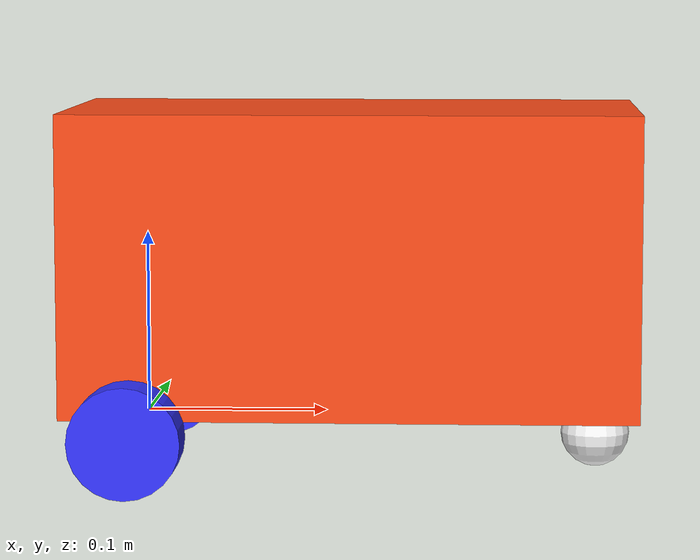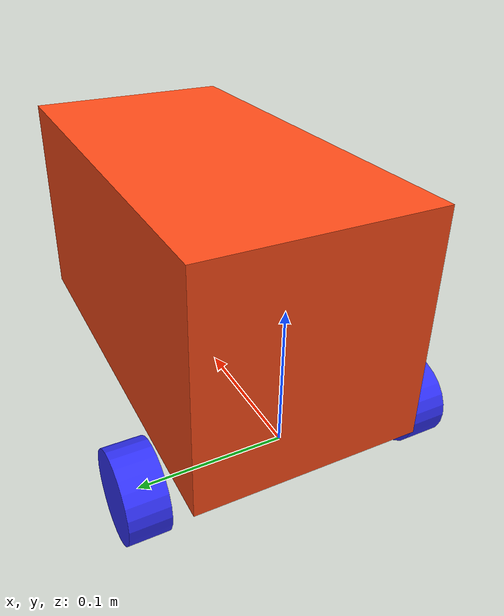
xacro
<?xml version="1.0"?>
<robot xmlns:xacro="http://www.ros.org/wiki/xacro">

    <xacro:include filename="inertial_macros.xacro" />

    <xacro:property name="chassis_length" value="0.311"/>
    <xacro:property name="chassis_width" value="0.16"/>
    <xacro:property name="chassis_height" value="0.164"/>
    <xacro:property name="chassis_mass" value="1.0"/>
    <xacro:property name="wheel_radius" value="0.03"/>
    <xacro:property name="wheel_thickness" value="0.027"/>
    <xacro:property name="wheel_mass" value="0.05"/>
    <xacro:property name="wheel_offset_x" value="0.039883"/>
    <xacro:property name="wheel_offset_y" value="0.10255"/>
    <xacro:property name="wheel_offset_z" value="-0.0060857"/>
    <xacro:property name="caster_wheel_radius" value="0.01905"/>
    <xacro:property name="caster_wheel_mass" value="0.01"/>
    <xacro:property name="caster_wheel_offset_x" value="0.290"/>
    <xacro:property name="caster_wheel_offset_z" value="${wheel_offset_z - wheel_radius + caster_wheel_radius}"/>
    <xacro:property name="chassis_z_compensation" value="0.185"/>

    <material name="white">
        <color rgba="1 1 1 1" />
    </material>

    <material name="orange">
        <color rgba="1 0.3 0.1 1" />
    </material>

    <material name="blue">
        <color rgba="0.2 0.2 1 1" />
    </material>

     <material name="red">
        <color rgba="1 0 0 1" />
    </material>

    <material name="black">
        <color rgba="0 0 0 1" />
    </material>

    <!-- BASE LINK -->

    <link name="base_link">

    </link>

    <!-- BASE FOOTPRINT LINK -->
    <joint name="base_footprint_joint" type="fixed">
        <parent link="base_link"/>
        <child link="base_footprint" />
        <origin xyz="0 0 0" rpy="0 0 0" />
    </joint>

    <link name="base_footprint">
    </link>

    <!-- CHASSIS LINK -->

    <joint name="chassis_joint" type="fixed">
        <parent link="base_link"/>
        <child link="chassis"/>
        <origin xyz="${-wheel_offset_x} 0 ${-wheel_offset_z}" />

    </joint>

    <link name="chassis">
     <visual>
            <origin xyz="${chassis_length/2} 0 ${chassis_height/2}"/>
            <geometry>
                <box size="${chassis_length} ${chassis_width} ${chassis_height}"/>
            </geometry>
            <material name="orange"/>
        </visual>

        <collision>
            <origin xyz="${chassis_length/2} 0 ${chassis_height/2}"/>
            <geometry>
                <box size="${chassis_length} ${chassis_width} ${chassis_height}"/>
            </geometry>
        </collision>
        <xacro:inertial_box mass="0.5" x="${chassis_length}" y="${chassis_width}" z="${chassis_height}">
            <origin xyz="${chassis_length/2} 0 ${chassis_height/2}" rpy="0 0 0"/>
        </xacro:inertial_box>
    </link>

    <!-- LEFT WHEEL LINK-->

    <joint name="left_wheel_joint" type="continuous">
        <parent link="base_link"/>
        <child link="left_wheel"/>
        <origin xyz="0 ${wheel_offset_y} 0" rpy="-${pi/2} 0 0" />
        <axis xyz="0 0 1"/>
    </joint>

    <link name="left_wheel">
        <visual>
            <geometry>
                <cylinder radius="${wheel_radius}" length="${wheel_thickness}"/>
            </geometry>
            <material name="blue"/>
        </visual>
        <collision>
            <geometry>
                <sphere radius="${wheel_radius}"/>
            </geometry>
        </collision>
        <xacro:inertial_cylinder mass="${wheel_mass}" length="${wheel_thickness}" radius="${wheel_radius}">
            <origin xyz="0 0 0" rpy="0 0 0"/>
        </xacro:inertial_cylinder>
    </link>

    <!-- RIGHT WHEEL LINK-->
    <joint name="right_wheel_joint" type="continuous">
        <parent link="base_link"/>
        <child link="right_wheel"/>
        <origin xyz="0 ${-wheel_offset_y} 0" rpy="${pi/2} 0 0" />
        <axis xyz="0 0 -1"/>
    </joint>

    <link name="right_wheel">
        <visual>
            <geometry>
                <cylinder radius="${wheel_radius}" length="${wheel_thickness}"/>
            </geometry>
            <material name="blue"/>
        </visual>
        <collision>
            <geometry>
                <sphere radius="${wheel_radius}"/>
            </geometry>
        </collision>
        <xacro:inertial_cylinder mass="${wheel_mass}" length="${wheel_thickness}" radius="${wheel_radius}">
            <origin xyz="0 0 0" rpy="0 0 0"/>
        </xacro:inertial_cylinder>
    </link>

    <!-- CASTER WHEEL LINK-->
    <joint name="caster_wheel_joint" type="fixed">
        <parent link="chassis"/>
        <child link="caster_wheel"/>
        <origin xyz="${caster_wheel_offset_x} 0 ${caster_wheel_offset_z}"/>
    </joint>

    <link name="caster_wheel">
        <visual>
            <geometry>
                <sphere radius="${caster_wheel_radius}"/>
            </geometry>
            <material name="white"/>
        </visual>
        <collision>
            <geometry>
                <sphere radius="${caster_wheel_radius}"/>
            </geometry>
        </collision>
        <xacro:inertial_sphere mass="${caster_wheel_mass}" radius="${caster_wheel_radius}">
            <origin xyz="0 0 0" rpy="0 0 0"/>
        </xacro:inertial_sphere>
    </link>

</robot>
